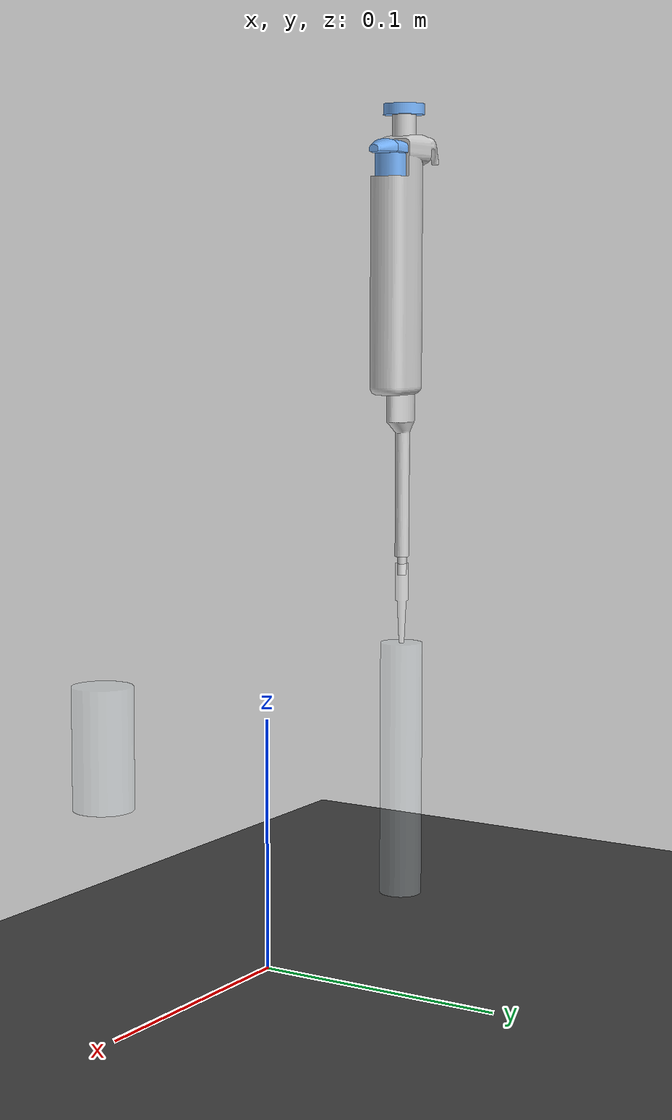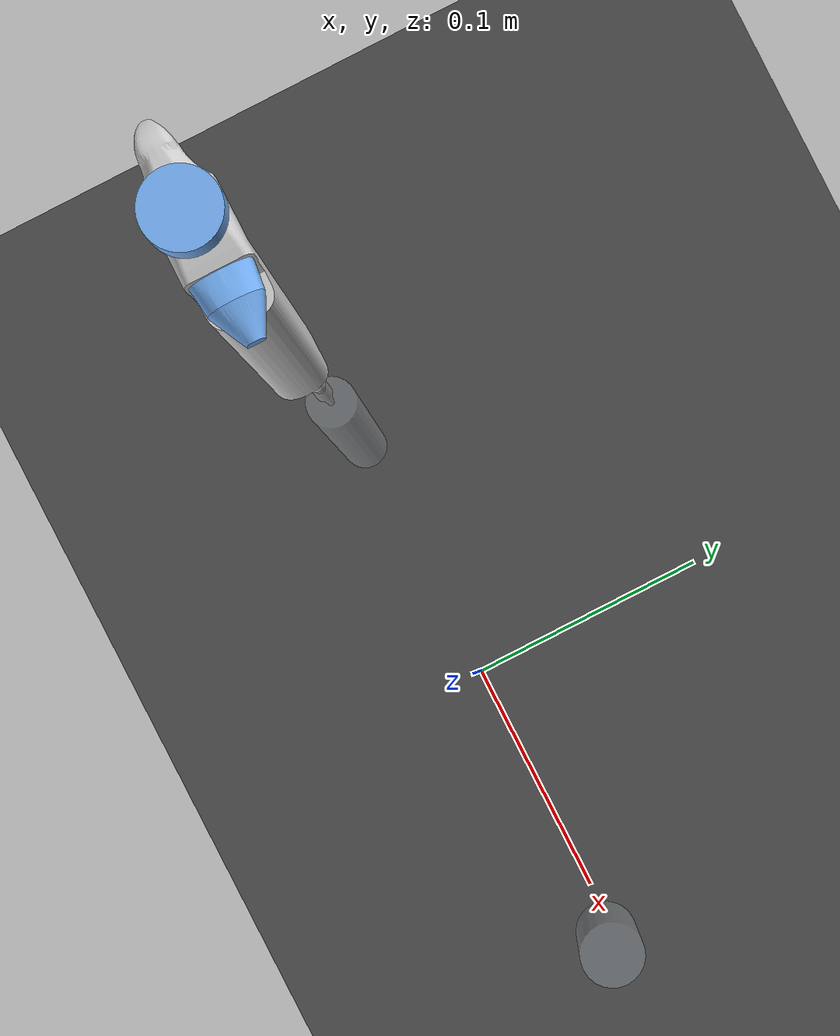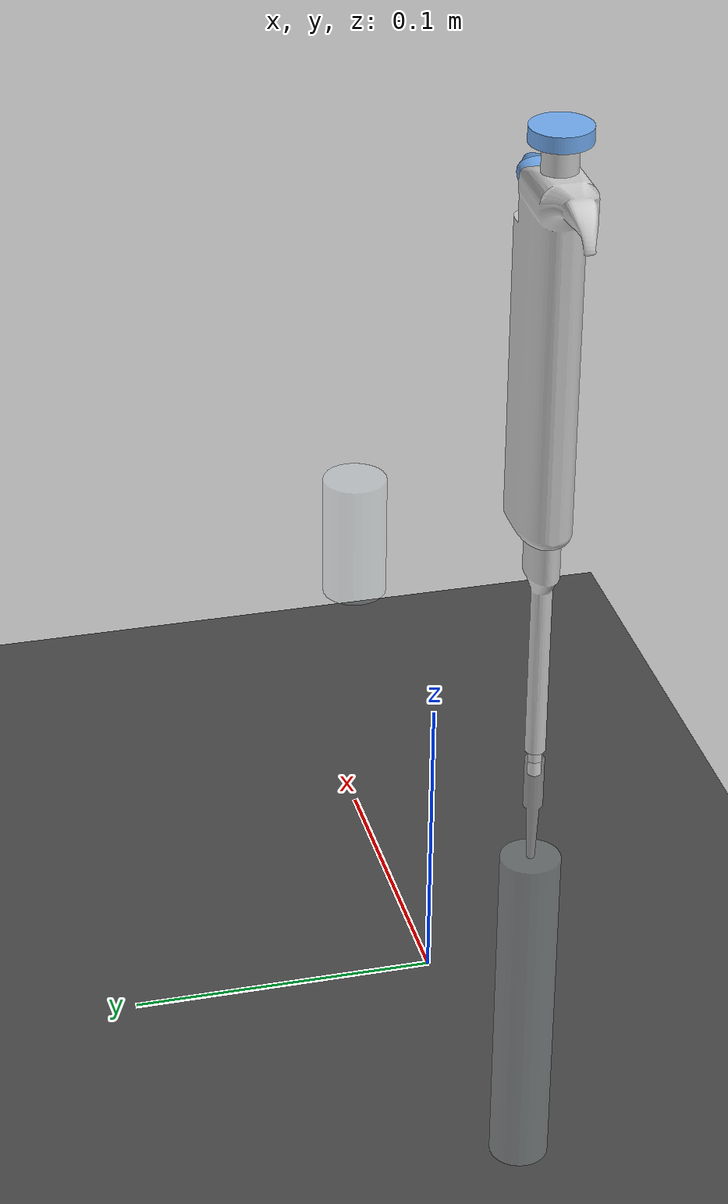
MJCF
<mujoco model="pipette_liquid_transfer_demo">
  <compiler angle="radian" autolimits="true" meshdir="/data/tianang/projects/AutoBio/autobio/assets/" />
  <option timestep="0.002" integrator="implicitfast" cone="elliptic" gravity="0 0 -9.81" />

  <visual>
    <headlight diffuse="0.65 0.65 0.65" ambient="0.35 0.35 0.35" specular="0.1 0.1 0.1" />
    <global azimuth="135" elevation="-18" offwidth="1280" offheight="720" />
  </visual>

  <asset>
    <texture name="grid" type="2d" builtin="checker" width="512" height="512" rgb1="0.25 0.25 0.25" rgb2="0.32 0.32 0.32" />
    <material name="floor_grid" texture="grid" texrepeat="4 4" reflectance="0.08" />

    <mesh name="pipette_connector_visual" file="tool/pipette/connector_visual.obj" scale="0.1 0.1 0.1" />
    <mesh name="pipette_knob_visual" file="tool/pipette/knob_visual.obj" scale="0.1 0.1 0.1" />
    <mesh name="pipette_tube_visual" file="tool/pipette/tube_visual.obj" scale="0.1 0.1 0.1" />
    <mesh name="pipette_tube_collision_0" file="tool/pipette/tube_collision_0.obj" scale="0.1 0.1 0.1" />
    <mesh name="pipette_tube_collision_1" file="tool/pipette/tube_collision_1.obj" scale="0.1 0.1 0.1" />
    <mesh name="pipette_pusher_right1_visual" file="tool/pipette/pusher_right1_visual.obj" scale="0.1 0.1 0.1" />
    <mesh name="pipette_pusher_right1_collision_0" file="tool/pipette/pusher_right1_collision_0.obj" scale="0.1 0.1 0.1" />
    <mesh name="pipette_pusher_right2_visual" file="tool/pipette/pusher_right2_visual.obj" scale="0.1 0.1 0.1" />
    <mesh name="pipette_pusher_right2_collision_0" file="tool/pipette/pusher_right2_collision_0.obj" scale="0.1 0.1 0.1" />
    <mesh name="pipette_body_visual" file="tool/pipette/body_visual.obj" scale="0.1 0.1 0.1" />
    <mesh name="pipette_body_collision_0" file="tool/pipette/body_collision_0.obj" scale="0.1 0.1 0.1" />
    <mesh name="pipette_body_collision_1" file="tool/pipette/body_collision_1.obj" scale="0.1 0.1 0.1" />
    <mesh name="pipette_body_collision_2" file="tool/pipette/body_collision_2.obj" scale="0.1 0.1 0.1" />
    <mesh name="pipette_body_collision_3" file="tool/pipette/body_collision_3.obj" scale="0.1 0.1 0.1" />
    <mesh name="pipette_pusher_mid_visual" file="tool/pipette/pusher_mid_visual.obj" scale="0.1 0.1 0.1" />
    <mesh name="pipette_pusher_right3_visual" file="tool/pipette/pusher_right3_visual.obj" scale="0.1 0.1 0.1" />
    <mesh name="pipette_pusher_right3_collision_0" file="tool/pipette/pusher_right3_collision_0.obj" scale="0.1 0.1 0.1" />
    <mesh name="pipette_pusher_right3_collision_1" file="tool/pipette/pusher_right3_collision_1.obj" scale="0.1 0.1 0.1" />
    <mesh name="pipette_tip_visual" file="container/tip_200ul_vis/visual.obj" scale="0.001 0.001 0.001" />
    <mesh name="pipette_tip_collision_0" file="container/tip_200ul_col/tip_collision_0.obj" scale="0.001 0.001 0.001" />

    <material name="pipette_plastic" rgba="0.8 0.8 0.8 1" />
    <material name="pipette_button" rgba="0.45 0.68 0.95 1" />
    <material name="tip_clear" rgba="1 1 1 0.35" />
    <material name="glass_clear" rgba="0.9 0.97 1 0.22" />
    <material name="liquid_blue" rgba="0.08 0.36 0.95 0.68" specular="0.85" shininess="0.8" />
  </asset>

  <worldbody>
    <light name="key" pos="0.2 -0.5 0.55" dir="-0.2 0.6 -1" diffuse="0.8 0.8 0.8" />
    <geom name="floor" type="plane" size="0.45 0.35 0.02" material="floor_grid" />

    <camera name="liquid_camera" pos="0.20 -0.34 0.21" xyaxes="0.86 0.51 0 -0.18 0.31 0.93" />

    <body name="source_tube" pos="-0.105 0 0">
      <geom name="source_tube_wall" type="cylinder" size="0.009 0.055" pos="0 0 0.061" contype="0" conaffinity="0" group="2" material="glass_clear" />
      <geom name="source_liquid" type="cylinder" size="0.006 0.0001" pos="0 0 0.0961" contype="0" conaffinity="0" group="2" material="liquid_blue" />
    </body>

    <body name="target_well" pos="0.105 0 0">
      <geom name="target_well_wall" type="cylinder" size="0.011 0.022" pos="0 0 0.108" contype="0" conaffinity="0" group="2" material="glass_clear" />
      <geom name="target_liquid" type="cylinder" size="0.0045 0.0001" pos="0 0 0.0961" contype="0" conaffinity="0" group="2" rgba="0.08 0.36 0.95 0" />
    </body>

    <body name="pipette" pos="-0.105 0 0.1534" quat="1 0 0 0">
      <geom type="mesh" contype="0" conaffinity="0" group="2" mesh="pipette_body_visual" material="pipette_plastic" />
      <geom type="mesh" group="3" mesh="pipette_body_collision_0" />
      <geom type="mesh" group="3" mesh="pipette_body_collision_1" />
      <geom type="mesh" group="3" mesh="pipette_body_collision_2" />
      <geom type="mesh" group="3" mesh="pipette_body_collision_3" />
      <geom type="mesh" contype="0" conaffinity="0" group="2" mesh="pipette_tube_visual" material="pipette_plastic" />
      <geom type="mesh" group="3" mesh="pipette_tube_collision_0" />
      <geom type="mesh" group="3" mesh="pipette_tube_collision_1" />
      <geom name="connector_visual" type="mesh" contype="0" conaffinity="0" group="2" mesh="pipette_connector_visual" material="pipette_plastic" />
      <geom name="connector_collision" size="0.00199955 0.004" pos="0 0 -0.004" type="cylinder" conaffinity="5" group="3" />

      <body name="pipette_ejector">
        <joint name="pipette_ejector" pos="0 0 0" axis="0 0 1" type="slide" springref="0.006333333333" stiffness="315.789473684" limited="true" range="-0.0095 0" damping="8" />
        <geom type="mesh" contype="0" conaffinity="0" group="2" mesh="pipette_pusher_right1_visual" material="pipette_button" />
        <geom type="mesh" group="3" mesh="pipette_pusher_right1_collision_0" />
        <geom type="mesh" contype="0" conaffinity="0" group="2" mesh="pipette_pusher_right2_visual" material="pipette_button" />
        <geom type="mesh" group="3" mesh="pipette_pusher_right2_collision_0" />
        <geom type="mesh" contype="0" conaffinity="0" group="2" mesh="pipette_pusher_right3_visual" material="pipette_button" />
        <geom type="mesh" group="3" mesh="pipette_pusher_right3_collision_0" />
        <geom type="mesh" group="3" mesh="pipette_pusher_right3_collision_1" />
      </body>

      <body name="pipette_button">
        <joint name="pipette_button" pos="0 0 0" axis="0 0 1" type="slide" springref="0.04" stiffness="1" limited="true" range="-0.008 0" damping="1" />
        <geom type="mesh" contype="0" conaffinity="0" group="2" mesh="pipette_pusher_mid_visual" material="pipette_plastic" />
        <geom size="0.00502107 0.00485" pos="0 0 0.181306" type="cylinder" group="3" />
        <body name="pipette_knob">
          <joint name="knob" pos="0 0 0" axis="0 0 1" range="-1.5 1.5" damping="1" frictionloss="0.0001" />
          <geom type="mesh" contype="0" conaffinity="0" group="2" mesh="pipette_knob_visual" material="pipette_button" />
          <geom size="0.00869505 0.00225" pos="0 0 0.188406" type="cylinder" group="3" />
        </body>
      </body>

      <body name="pipette_tip" pos="0 0 -0.003" quat="1 0 0 0">
        <geom type="mesh" contype="0" conaffinity="0" group="2" mesh="pipette_tip_visual" material="tip_clear" />
        <geom type="mesh" group="3" mesh="pipette_tip_collision_0" />
        <site name="tip_site" pos="0 0 -0.05" quat="1 0 0 0" type="sphere" group="5" rgba="0.9 0.9 0.9 1" size="0.0008" />

        <geom name="tip_liquid_seg_00" type="cylinder" size="0.00022 0.00072" pos="0 0 -0.0488" contype="0" conaffinity="0" group="2" material="liquid_blue" rgba="0.08 0.36 0.95 0" />
        <geom name="tip_liquid_seg_01" type="cylinder" size="0.00025 0.00072" pos="0 0 -0.0473" contype="0" conaffinity="0" group="2" material="liquid_blue" rgba="0.08 0.36 0.95 0" />
        <geom name="tip_liquid_seg_02" type="cylinder" size="0.00029 0.00072" pos="0 0 -0.0458" contype="0" conaffinity="0" group="2" material="liquid_blue" rgba="0.08 0.36 0.95 0" />
        <geom name="tip_liquid_seg_03" type="cylinder" size="0.00033 0.00072" pos="0 0 -0.0443" contype="0" conaffinity="0" group="2" material="liquid_blue" rgba="0.08 0.36 0.95 0" />
        <geom name="tip_liquid_seg_04" type="cylinder" size="0.00038 0.00072" pos="0 0 -0.0428" contype="0" conaffinity="0" group="2" material="liquid_blue" rgba="0.08 0.36 0.95 0" />
        <geom name="tip_liquid_seg_05" type="cylinder" size="0.00043 0.00072" pos="0 0 -0.0413" contype="0" conaffinity="0" group="2" material="liquid_blue" rgba="0.08 0.36 0.95 0" />
        <geom name="tip_liquid_seg_06" type="cylinder" size="0.00048 0.00072" pos="0 0 -0.0398" contype="0" conaffinity="0" group="2" material="liquid_blue" rgba="0.08 0.36 0.95 0" />
        <geom name="tip_liquid_seg_07" type="cylinder" size="0.00054 0.00072" pos="0 0 -0.0383" contype="0" conaffinity="0" group="2" material="liquid_blue" rgba="0.08 0.36 0.95 0" />
        <geom name="tip_liquid_seg_08" type="cylinder" size="0.00060 0.00072" pos="0 0 -0.0368" contype="0" conaffinity="0" group="2" material="liquid_blue" rgba="0.08 0.36 0.95 0" />
        <geom name="tip_liquid_seg_09" type="cylinder" size="0.00066 0.00072" pos="0 0 -0.0353" contype="0" conaffinity="0" group="2" material="liquid_blue" rgba="0.08 0.36 0.95 0" />
        <geom name="tip_liquid_seg_10" type="cylinder" size="0.00073 0.00072" pos="0 0 -0.0338" contype="0" conaffinity="0" group="2" material="liquid_blue" rgba="0.08 0.36 0.95 0" />
        <geom name="tip_liquid_seg_11" type="cylinder" size="0.00080 0.00072" pos="0 0 -0.0323" contype="0" conaffinity="0" group="2" material="liquid_blue" rgba="0.08 0.36 0.95 0" />
        <geom name="tip_liquid_seg_12" type="cylinder" size="0.00087 0.00072" pos="0 0 -0.0308" contype="0" conaffinity="0" group="2" material="liquid_blue" rgba="0.08 0.36 0.95 0" />
        <geom name="tip_liquid_seg_13" type="cylinder" size="0.00094 0.00072" pos="0 0 -0.0293" contype="0" conaffinity="0" group="2" material="liquid_blue" rgba="0.08 0.36 0.95 0" />
        <geom name="tip_liquid_seg_14" type="cylinder" size="0.00102 0.00072" pos="0 0 -0.0278" contype="0" conaffinity="0" group="2" material="liquid_blue" rgba="0.08 0.36 0.95 0" />
        <geom name="tip_liquid_seg_15" type="cylinder" size="0.00110 0.00072" pos="0 0 -0.0263" contype="0" conaffinity="0" group="2" material="liquid_blue" rgba="0.08 0.36 0.95 0" />
        <geom name="tip_liquid_seg_16" type="cylinder" size="0.00118 0.00072" pos="0 0 -0.0248" contype="0" conaffinity="0" group="2" material="liquid_blue" rgba="0.08 0.36 0.95 0" />
        <geom name="tip_liquid_seg_17" type="cylinder" size="0.00126 0.00072" pos="0 0 -0.0233" contype="0" conaffinity="0" group="2" material="liquid_blue" rgba="0.08 0.36 0.95 0" />
        <geom name="tip_liquid_seg_18" type="cylinder" size="0.00135 0.00072" pos="0 0 -0.0218" contype="0" conaffinity="0" group="2" material="liquid_blue" rgba="0.08 0.36 0.95 0" />
        <geom name="tip_liquid_seg_19" type="cylinder" size="0.00144 0.00072" pos="0 0 -0.0203" contype="0" conaffinity="0" group="2" material="liquid_blue" rgba="0.08 0.36 0.95 0" />
        <geom name="tip_liquid_seg_20" type="cylinder" size="0.00154 0.00072" pos="0 0 -0.0188" contype="0" conaffinity="0" group="2" material="liquid_blue" rgba="0.08 0.36 0.95 0" />
        <geom name="tip_liquid_seg_21" type="cylinder" size="0.00164 0.00072" pos="0 0 -0.0173" contype="0" conaffinity="0" group="2" material="liquid_blue" rgba="0.08 0.36 0.95 0" />
        <geom name="tip_liquid_seg_22" type="cylinder" size="0.00174 0.00072" pos="0 0 -0.0158" contype="0" conaffinity="0" group="2" material="liquid_blue" rgba="0.08 0.36 0.95 0" />
        <geom name="tip_liquid_seg_23" type="cylinder" size="0.00185 0.00072" pos="0 0 -0.0143" contype="0" conaffinity="0" group="2" material="liquid_blue" rgba="0.08 0.36 0.95 0" />
      </body>
    </body>
  </worldbody>

  <contact>
    <exclude body1="pipette" body2="pipette_button" />
    <exclude body1="pipette" body2="pipette_knob" />
    <exclude body1="pipette" body2="pipette_ejector" />
    <exclude body1="pipette" body2="pipette_tip" />
  </contact>

  <actuator>
    <position name="pipette_button_position" joint="pipette_button" ctrlrange="-0.008 0" kp="2500" kv="25" forcerange="-8 8" />
  </actuator>
</mujoco>
